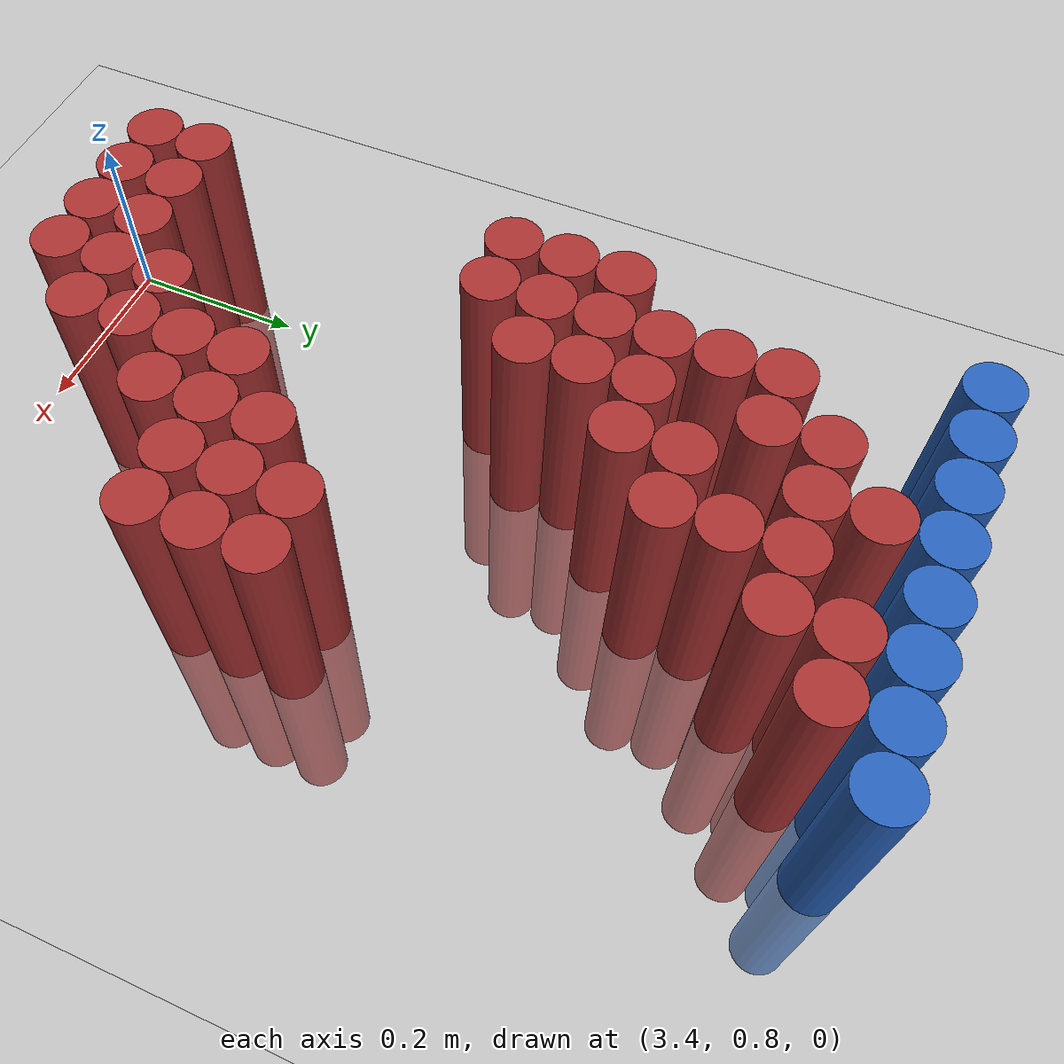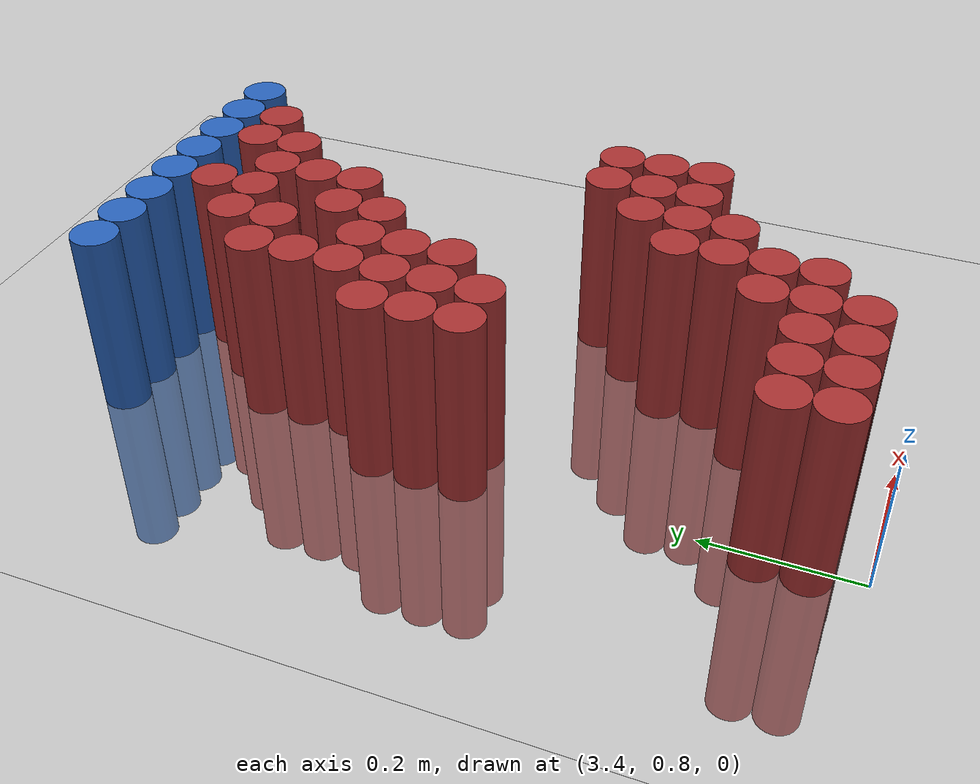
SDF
<sdf version="1.6">
 <world name="default">
  <model name="ground_plane">
   <static>1</static>
   <link name="link">
    <collision name="collision">
     <geometry><plane><normal>0 0 1</normal><size>100 100</size></plane></geometry>
     <surface><friction><ode><mu>100</mu><mu2>50</mu2></ode></friction></surface>
    </collision>
    <visual name="visual">
     <cast_shadows>0</cast_shadows>
     <geometry><plane><normal>0 0 1</normal><size>100 100</size></plane></geometry>
     <material>
      <script><uri>file://media/materials/scripts/gazebo.material</uri><name>Gazebo/Grey</name></script>
     </material>
    </visual>
   </link>
  </model>
  <model name="unit_cylinder_117">
   <static>1</static>
   <pose>3.390000 1.770000 0.000000 0.000000 0.000000 0.000000</pose>
   <link name="link">
    <inertial>
     <mass>1</mass>
     <inertia><ixx>0.145833</ixx><ixy>0</ixy><ixz>0</ixz><iyy>0.145833</iyy><iyz>0</iyz><izz>0.125</izz></inertia>
    </inertial>
    <collision name="collision">
     <geometry><cylinder><radius>0.030000</radius><length>0.5</length></cylinder></geometry>
    </collision>
    <visual name="visual">
     <geometry><cylinder><radius>0.030000</radius><length>0.5</length></cylinder></geometry>
     <material>
      <ambient>0.152000 0.379000 0.720000 1</ambient>
      <diffuse>0.152000 0.379000 0.720000 1</diffuse>
     </material>
     <material>
      <script><name>Gazebo/Grey</name><uri>file://media/materials/scripts/gazebo.material</uri></script>
     </material>
    </visual>
   </link>
  </model>
  <model name="unit_cylinder_118">
   <static>1</static>
   <pose>3.450000 1.770000 0.000000 0.000000 0.000000 0.000000</pose>
   <link name="link">
    <inertial>
     <mass>1</mass>
     <inertia><ixx>0.145833</ixx><ixy>0</ixy><ixz>0</ixz><iyy>0.145833</iyy><iyz>0</iyz><izz>0.125</izz></inertia>
    </inertial>
    <collision name="collision">
     <geometry><cylinder><radius>0.030000</radius><length>0.5</length></cylinder></geometry>
    </collision>
    <visual name="visual">
     <geometry><cylinder><radius>0.030000</radius><length>0.5</length></cylinder></geometry>
     <material>
      <ambient>0.152000 0.379000 0.720000 1</ambient>
      <diffuse>0.152000 0.379000 0.720000 1</diffuse>
     </material>
     <material>
      <script><name>Gazebo/Grey</name><uri>file://media/materials/scripts/gazebo.material</uri></script>
     </material>
    </visual>
   </link>
  </model>
  <model name="unit_cylinder_119">
   <static>1</static>
   <pose>3.510000 1.770000 0.000000 0.000000 0.000000 0.000000</pose>
   <link name="link">
    <inertial>
     <mass>1</mass>
     <inertia><ixx>0.145833</ixx><ixy>0</ixy><ixz>0</ixz><iyy>0.145833</iyy><iyz>0</iyz><izz>0.125</izz></inertia>
    </inertial>
    <collision name="collision">
     <geometry><cylinder><radius>0.030000</radius><length>0.5</length></cylinder></geometry>
    </collision>
    <visual name="visual">
     <geometry><cylinder><radius>0.030000</radius><length>0.5</length></cylinder></geometry>
     <material>
      <ambient>0.152000 0.379000 0.720000 1</ambient>
      <diffuse>0.152000 0.379000 0.720000 1</diffuse>
     </material>
     <material>
      <script><name>Gazebo/Grey</name><uri>file://media/materials/scripts/gazebo.material</uri></script>
     </material>
    </visual>
   </link>
  </model>
  <model name="unit_cylinder_120">
   <static>1</static>
   <pose>3.570000 1.770000 0.000000 0.000000 0.000000 0.000000</pose>
   <link name="link">
    <inertial>
     <mass>1</mass>
     <inertia><ixx>0.145833</ixx><ixy>0</ixy><ixz>0</ixz><iyy>0.145833</iyy><iyz>0</iyz><izz>0.125</izz></inertia>
    </inertial>
    <collision name="collision">
     <geometry><cylinder><radius>0.030000</radius><length>0.5</length></cylinder></geometry>
    </collision>
    <visual name="visual">
     <geometry><cylinder><radius>0.030000</radius><length>0.5</length></cylinder></geometry>
     <material>
      <ambient>0.152000 0.379000 0.720000 1</ambient>
      <diffuse>0.152000 0.379000 0.720000 1</diffuse>
     </material>
     <material>
      <script><name>Gazebo/Grey</name><uri>file://media/materials/scripts/gazebo.material</uri></script>
     </material>
    </visual>
   </link>
  </model>
  <model name="unit_cylinder_121">
   <static>1</static>
   <pose>3.630000 1.770000 0.000000 0.000000 0.000000 0.000000</pose>
   <link name="link">
    <inertial>
     <mass>1</mass>
     <inertia><ixx>0.145833</ixx><ixy>0</ixy><ixz>0</ixz><iyy>0.145833</iyy><iyz>0</iyz><izz>0.125</izz></inertia>
    </inertial>
    <collision name="collision">
     <geometry><cylinder><radius>0.030000</radius><length>0.5</length></cylinder></geometry>
    </collision>
    <visual name="visual">
     <geometry><cylinder><radius>0.030000</radius><length>0.5</length></cylinder></geometry>
     <material>
      <ambient>0.152000 0.379000 0.720000 1</ambient>
      <diffuse>0.152000 0.379000 0.720000 1</diffuse>
     </material>
     <material>
      <script><name>Gazebo/Grey</name><uri>file://media/materials/scripts/gazebo.material</uri></script>
     </material>
    </visual>
   </link>
  </model>
  <model name="unit_cylinder_122">
   <static>1</static>
   <pose>3.690000 1.770000 0.000000 0.000000 0.000000 0.000000</pose>
   <link name="link">
    <inertial>
     <mass>1</mass>
     <inertia><ixx>0.145833</ixx><ixy>0</ixy><ixz>0</ixz><iyy>0.145833</iyy><iyz>0</iyz><izz>0.125</izz></inertia>
    </inertial>
    <collision name="collision">
     <geometry><cylinder><radius>0.030000</radius><length>0.5</length></cylinder></geometry>
    </collision>
    <visual name="visual">
     <geometry><cylinder><radius>0.030000</radius><length>0.5</length></cylinder></geometry>
     <material>
      <ambient>0.152000 0.379000 0.720000 1</ambient>
      <diffuse>0.152000 0.379000 0.720000 1</diffuse>
     </material>
     <material>
      <script><name>Gazebo/Grey</name><uri>file://media/materials/scripts/gazebo.material</uri></script>
     </material>
    </visual>
   </link>
  </model>
  <model name="unit_cylinder_123">
   <static>1</static>
   <pose>3.750000 1.770000 0.000000 0.000000 0.000000 0.000000</pose>
   <link name="link">
    <inertial>
     <mass>1</mass>
     <inertia><ixx>0.145833</ixx><ixy>0</ixy><ixz>0</ixz><iyy>0.145833</iyy><iyz>0</iyz><izz>0.125</izz></inertia>
    </inertial>
    <collision name="collision">
     <geometry><cylinder><radius>0.030000</radius><length>0.5</length></cylinder></geometry>
    </collision>
    <visual name="visual">
     <geometry><cylinder><radius>0.030000</radius><length>0.5</length></cylinder></geometry>
     <material>
      <ambient>0.152000 0.379000 0.720000 1</ambient>
      <diffuse>0.152000 0.379000 0.720000 1</diffuse>
     </material>
     <material>
      <script><name>Gazebo/Grey</name><uri>file://media/materials/scripts/gazebo.material</uri></script>
     </material>
    </visual>
   </link>
  </model>
  <model name="unit_cylinder_124">
   <static>1</static>
   <pose>3.810000 1.770000 0.000000 0.000000 0.000000 0.000000</pose>
   <link name="link">
    <inertial>
     <mass>1</mass>
     <inertia><ixx>0.145833</ixx><ixy>0</ixy><ixz>0</ixz><iyy>0.145833</iyy><iyz>0</iyz><izz>0.125</izz></inertia>
    </inertial>
    <collision name="collision">
     <geometry><cylinder><radius>0.030000</radius><length>0.5</length></cylinder></geometry>
    </collision>
    <visual name="visual">
     <geometry><cylinder><radius>0.030000</radius><length>0.5</length></cylinder></geometry>
     <material>
      <ambient>0.152000 0.379000 0.720000 1</ambient>
      <diffuse>0.152000 0.379000 0.720000 1</diffuse>
     </material>
     <material>
      <script><name>Gazebo/Grey</name><uri>file://media/materials/scripts/gazebo.material</uri></script>
     </material>
    </visual>
   </link>
  </model>
  <model name="unit_cylinder_131">
   <static>1</static>
   <pose>3.570000 1.710000 0.000000 0.000000 0.000000 0.000000</pose>
   <link name="link">
    <inertial>
     <mass>1</mass>
     <inertia><ixx>0.145833</ixx><ixy>0</ixy><ixz>0</ixz><iyy>0.145833</iyy><iyz>0</iyz><izz>0.125</izz></inertia>
    </inertial>
    <collision name="collision">
     <geometry><cylinder><radius>0.030000</radius><length>0.5</length></cylinder></geometry>
    </collision>
    <visual name="visual">
     <geometry><cylinder><radius>0.030000</radius><length>0.5</length></cylinder></geometry>
     <material>
      <ambient>0.648000 0.192000 0.192000 1</ambient>
      <diffuse>0.648000 0.192000 0.192000 1</diffuse>
     </material>
     <material>
      <script><name>Gazebo/Grey</name><uri>file://media/materials/scripts/gazebo.material</uri></script>
     </material>
    </visual>
   </link>
  </model>
  <model name="unit_cylinder_132">
   <static>1</static>
   <pose>3.690000 1.710000 0.000000 0.000000 0.000000 0.000000</pose>
   <link name="link">
    <inertial>
     <mass>1</mass>
     <inertia><ixx>0.145833</ixx><ixy>0</ixy><ixz>0</ixz><iyy>0.145833</iyy><iyz>0</iyz><izz>0.125</izz></inertia>
    </inertial>
    <collision name="collision">
     <geometry><cylinder><radius>0.030000</radius><length>0.5</length></cylinder></geometry>
    </collision>
    <visual name="visual">
     <geometry><cylinder><radius>0.030000</radius><length>0.5</length></cylinder></geometry>
     <material>
      <ambient>0.648000 0.192000 0.192000 1</ambient>
      <diffuse>0.648000 0.192000 0.192000 1</diffuse>
     </material>
     <material>
      <script><name>Gazebo/Grey</name><uri>file://media/materials/scripts/gazebo.material</uri></script>
     </material>
    </visual>
   </link>
  </model>
  <model name="unit_cylinder_133">
   <static>1</static>
   <pose>3.750000 1.710000 0.000000 0.000000 0.000000 0.000000</pose>
   <link name="link">
    <inertial>
     <mass>1</mass>
     <inertia><ixx>0.145833</ixx><ixy>0</ixy><ixz>0</ixz><iyy>0.145833</iyy><iyz>0</iyz><izz>0.125</izz></inertia>
    </inertial>
    <collision name="collision">
     <geometry><cylinder><radius>0.030000</radius><length>0.5</length></cylinder></geometry>
    </collision>
    <visual name="visual">
     <geometry><cylinder><radius>0.030000</radius><length>0.5</length></cylinder></geometry>
     <material>
      <ambient>0.648000 0.192000 0.192000 1</ambient>
      <diffuse>0.648000 0.192000 0.192000 1</diffuse>
     </material>
     <material>
      <script><name>Gazebo/Grey</name><uri>file://media/materials/scripts/gazebo.material</uri></script>
     </material>
    </visual>
   </link>
  </model>
  <model name="unit_cylinder_139">
   <static>1</static>
   <pose>3.510000 1.650000 0.000000 0.000000 0.000000 0.000000</pose>
   <link name="link">
    <inertial>
     <mass>1</mass>
     <inertia><ixx>0.145833</ixx><ixy>0</ixy><ixz>0</ixz><iyy>0.145833</iyy><iyz>0</iyz><izz>0.125</izz></inertia>
    </inertial>
    <collision name="collision">
     <geometry><cylinder><radius>0.030000</radius><length>0.5</length></cylinder></geometry>
    </collision>
    <visual name="visual">
     <geometry><cylinder><radius>0.030000</radius><length>0.5</length></cylinder></geometry>
     <material>
      <ambient>0.648000 0.192000 0.192000 1</ambient>
      <diffuse>0.648000 0.192000 0.192000 1</diffuse>
     </material>
     <material>
      <script><name>Gazebo/Grey</name><uri>file://media/materials/scripts/gazebo.material</uri></script>
     </material>
    </visual>
   </link>
  </model>
  <model name="unit_cylinder_140">
   <static>1</static>
   <pose>3.570000 1.650000 0.000000 0.000000 0.000000 0.000000</pose>
   <link name="link">
    <inertial>
     <mass>1</mass>
     <inertia><ixx>0.145833</ixx><ixy>0</ixy><ixz>0</ixz><iyy>0.145833</iyy><iyz>0</iyz><izz>0.125</izz></inertia>
    </inertial>
    <collision name="collision">
     <geometry><cylinder><radius>0.030000</radius><length>0.5</length></cylinder></geometry>
    </collision>
    <visual name="visual">
     <geometry><cylinder><radius>0.030000</radius><length>0.5</length></cylinder></geometry>
     <material>
      <ambient>0.648000 0.192000 0.192000 1</ambient>
      <diffuse>0.648000 0.192000 0.192000 1</diffuse>
     </material>
     <material>
      <script><name>Gazebo/Grey</name><uri>file://media/materials/scripts/gazebo.material</uri></script>
     </material>
    </visual>
   </link>
  </model>
  <model name="unit_cylinder_141">
   <static>1</static>
   <pose>3.630000 1.650000 0.000000 0.000000 0.000000 0.000000</pose>
   <link name="link">
    <inertial>
     <mass>1</mass>
     <inertia><ixx>0.145833</ixx><ixy>0</ixy><ixz>0</ixz><iyy>0.145833</iyy><iyz>0</iyz><izz>0.125</izz></inertia>
    </inertial>
    <collision name="collision">
     <geometry><cylinder><radius>0.030000</radius><length>0.5</length></cylinder></geometry>
    </collision>
    <visual name="visual">
     <geometry><cylinder><radius>0.030000</radius><length>0.5</length></cylinder></geometry>
     <material>
      <ambient>0.648000 0.192000 0.192000 1</ambient>
      <diffuse>0.648000 0.192000 0.192000 1</diffuse>
     </material>
     <material>
      <script><name>Gazebo/Grey</name><uri>file://media/materials/scripts/gazebo.material</uri></script>
     </material>
    </visual>
   </link>
  </model>
  <model name="unit_cylinder_142">
   <static>1</static>
   <pose>3.690000 1.650000 0.000000 0.000000 0.000000 0.000000</pose>
   <link name="link">
    <inertial>
     <mass>1</mass>
     <inertia><ixx>0.145833</ixx><ixy>0</ixy><ixz>0</ixz><iyy>0.145833</iyy><iyz>0</iyz><izz>0.125</izz></inertia>
    </inertial>
    <collision name="collision">
     <geometry><cylinder><radius>0.030000</radius><length>0.5</length></cylinder></geometry>
    </collision>
    <visual name="visual">
     <geometry><cylinder><radius>0.030000</radius><length>0.5</length></cylinder></geometry>
     <material>
      <ambient>0.648000 0.192000 0.192000 1</ambient>
      <diffuse>0.648000 0.192000 0.192000 1</diffuse>
     </material>
     <material>
      <script><name>Gazebo/Grey</name><uri>file://media/materials/scripts/gazebo.material</uri></script>
     </material>
    </visual>
   </link>
  </model>
  <model name="unit_cylinder_151">
   <static>1</static>
   <pose>3.450000 1.590000 0.000000 0.000000 0.000000 0.000000</pose>
   <link name="link">
    <inertial>
     <mass>1</mass>
     <inertia><ixx>0.145833</ixx><ixy>0</ixy><ixz>0</ixz><iyy>0.145833</iyy><iyz>0</iyz><izz>0.125</izz></inertia>
    </inertial>
    <collision name="collision">
     <geometry><cylinder><radius>0.030000</radius><length>0.5</length></cylinder></geometry>
    </collision>
    <visual name="visual">
     <geometry><cylinder><radius>0.030000</radius><length>0.5</length></cylinder></geometry>
     <material>
      <ambient>0.648000 0.192000 0.192000 1</ambient>
      <diffuse>0.648000 0.192000 0.192000 1</diffuse>
     </material>
     <material>
      <script><name>Gazebo/Grey</name><uri>file://media/materials/scripts/gazebo.material</uri></script>
     </material>
    </visual>
   </link>
  </model>
  <model name="unit_cylinder_152">
   <static>1</static>
   <pose>3.510000 1.590000 0.000000 0.000000 0.000000 0.000000</pose>
   <link name="link">
    <inertial>
     <mass>1</mass>
     <inertia><ixx>0.145833</ixx><ixy>0</ixy><ixz>0</ixz><iyy>0.145833</iyy><iyz>0</iyz><izz>0.125</izz></inertia>
    </inertial>
    <collision name="collision">
     <geometry><cylinder><radius>0.030000</radius><length>0.5</length></cylinder></geometry>
    </collision>
    <visual name="visual">
     <geometry><cylinder><radius>0.030000</radius><length>0.5</length></cylinder></geometry>
     <material>
      <ambient>0.648000 0.192000 0.192000 1</ambient>
      <diffuse>0.648000 0.192000 0.192000 1</diffuse>
     </material>
     <material>
      <script><name>Gazebo/Grey</name><uri>file://media/materials/scripts/gazebo.material</uri></script>
     </material>
    </visual>
   </link>
  </model>
  <model name="unit_cylinder_153">
   <static>1</static>
   <pose>3.630000 1.590000 0.000000 0.000000 0.000000 0.000000</pose>
   <link name="link">
    <inertial>
     <mass>1</mass>
     <inertia><ixx>0.145833</ixx><ixy>0</ixy><ixz>0</ixz><iyy>0.145833</iyy><iyz>0</iyz><izz>0.125</izz></inertia>
    </inertial>
    <collision name="collision">
     <geometry><cylinder><radius>0.030000</radius><length>0.5</length></cylinder></geometry>
    </collision>
    <visual name="visual">
     <geometry><cylinder><radius>0.030000</radius><length>0.5</length></cylinder></geometry>
     <material>
      <ambient>0.648000 0.192000 0.192000 1</ambient>
      <diffuse>0.648000 0.192000 0.192000 1</diffuse>
     </material>
     <material>
      <script><name>Gazebo/Grey</name><uri>file://media/materials/scripts/gazebo.material</uri></script>
     </material>
    </visual>
   </link>
  </model>
  <model name="unit_cylinder_164">
   <static>1</static>
   <pose>3.450000 1.530000 0.000000 0.000000 0.000000 0.000000</pose>
   <link name="link">
    <inertial>
     <mass>1</mass>
     <inertia><ixx>0.145833</ixx><ixy>0</ixy><ixz>0</ixz><iyy>0.145833</iyy><iyz>0</iyz><izz>0.125</izz></inertia>
    </inertial>
    <collision name="collision">
     <geometry><cylinder><radius>0.030000</radius><length>0.5</length></cylinder></geometry>
    </collision>
    <visual name="visual">
     <geometry><cylinder><radius>0.030000</radius><length>0.5</length></cylinder></geometry>
     <material>
      <ambient>0.648000 0.192000 0.192000 1</ambient>
      <diffuse>0.648000 0.192000 0.192000 1</diffuse>
     </material>
     <material>
      <script><name>Gazebo/Grey</name><uri>file://media/materials/scripts/gazebo.material</uri></script>
     </material>
    </visual>
   </link>
  </model>
  <model name="unit_cylinder_165">
   <static>1</static>
   <pose>3.570000 1.530000 0.000000 0.000000 0.000000 0.000000</pose>
   <link name="link">
    <inertial>
     <mass>1</mass>
     <inertia><ixx>0.145833</ixx><ixy>0</ixy><ixz>0</ixz><iyy>0.145833</iyy><iyz>0</iyz><izz>0.125</izz></inertia>
    </inertial>
    <collision name="collision">
     <geometry><cylinder><radius>0.030000</radius><length>0.5</length></cylinder></geometry>
    </collision>
    <visual name="visual">
     <geometry><cylinder><radius>0.030000</radius><length>0.5</length></cylinder></geometry>
     <material>
      <ambient>0.648000 0.192000 0.192000 1</ambient>
      <diffuse>0.648000 0.192000 0.192000 1</diffuse>
     </material>
     <material>
      <script><name>Gazebo/Grey</name><uri>file://media/materials/scripts/gazebo.material</uri></script>
     </material>
    </visual>
   </link>
  </model>
  <model name="unit_cylinder_166">
   <static>1</static>
   <pose>3.630000 1.530000 0.000000 0.000000 0.000000 0.000000</pose>
   <link name="link">
    <inertial>
     <mass>1</mass>
     <inertia><ixx>0.145833</ixx><ixy>0</ixy><ixz>0</ixz><iyy>0.145833</iyy><iyz>0</iyz><izz>0.125</izz></inertia>
    </inertial>
    <collision name="collision">
     <geometry><cylinder><radius>0.030000</radius><length>0.5</length></cylinder></geometry>
    </collision>
    <visual name="visual">
     <geometry><cylinder><radius>0.030000</radius><length>0.5</length></cylinder></geometry>
     <material>
      <ambient>0.648000 0.192000 0.192000 1</ambient>
      <diffuse>0.648000 0.192000 0.192000 1</diffuse>
     </material>
     <material>
      <script><name>Gazebo/Grey</name><uri>file://media/materials/scripts/gazebo.material</uri></script>
     </material>
    </visual>
   </link>
  </model>
  <model name="unit_cylinder_174">
   <static>1</static>
   <pose>3.450000 1.470000 0.000000 0.000000 0.000000 0.000000</pose>
   <link name="link">
    <inertial>
     <mass>1</mass>
     <inertia><ixx>0.145833</ixx><ixy>0</ixy><ixz>0</ixz><iyy>0.145833</iyy><iyz>0</iyz><izz>0.125</izz></inertia>
    </inertial>
    <collision name="collision">
     <geometry><cylinder><radius>0.030000</radius><length>0.5</length></cylinder></geometry>
    </collision>
    <visual name="visual">
     <geometry><cylinder><radius>0.030000</radius><length>0.5</length></cylinder></geometry>
     <material>
      <ambient>0.648000 0.192000 0.192000 1</ambient>
      <diffuse>0.648000 0.192000 0.192000 1</diffuse>
     </material>
     <material>
      <script><name>Gazebo/Grey</name><uri>file://media/materials/scripts/gazebo.material</uri></script>
     </material>
    </visual>
   </link>
  </model>
  <model name="unit_cylinder_175">
   <static>1</static>
   <pose>3.510000 1.470000 0.000000 0.000000 0.000000 0.000000</pose>
   <link name="link">
    <inertial>
     <mass>1</mass>
     <inertia><ixx>0.145833</ixx><ixy>0</ixy><ixz>0</ixz><iyy>0.145833</iyy><iyz>0</iyz><izz>0.125</izz></inertia>
    </inertial>
    <collision name="collision">
     <geometry><cylinder><radius>0.030000</radius><length>0.5</length></cylinder></geometry>
    </collision>
    <visual name="visual">
     <geometry><cylinder><radius>0.030000</radius><length>0.5</length></cylinder></geometry>
     <material>
      <ambient>0.648000 0.192000 0.192000 1</ambient>
      <diffuse>0.648000 0.192000 0.192000 1</diffuse>
     </material>
     <material>
      <script><name>Gazebo/Grey</name><uri>file://media/materials/scripts/gazebo.material</uri></script>
     </material>
    </visual>
   </link>
  </model>
  <model name="unit_cylinder_176">
   <static>1</static>
   <pose>3.570000 1.470000 0.000000 0.000000 0.000000 0.000000</pose>
   <link name="link">
    <inertial>
     <mass>1</mass>
     <inertia><ixx>0.145833</ixx><ixy>0</ixy><ixz>0</ixz><iyy>0.145833</iyy><iyz>0</iyz><izz>0.125</izz></inertia>
    </inertial>
    <collision name="collision">
     <geometry><cylinder><radius>0.030000</radius><length>0.5</length></cylinder></geometry>
    </collision>
    <visual name="visual">
     <geometry><cylinder><radius>0.030000</radius><length>0.5</length></cylinder></geometry>
     <material>
      <ambient>0.648000 0.192000 0.192000 1</ambient>
      <diffuse>0.648000 0.192000 0.192000 1</diffuse>
     </material>
     <material>
      <script><name>Gazebo/Grey</name><uri>file://media/materials/scripts/gazebo.material</uri></script>
     </material>
    </visual>
   </link>
  </model>
  <model name="unit_cylinder_180">
   <static>1</static>
   <pose>3.390000 1.410000 0.000000 0.000000 0.000000 0.000000</pose>
   <link name="link">
    <inertial>
     <mass>1</mass>
     <inertia><ixx>0.145833</ixx><ixy>0</ixy><ixz>0</ixz><iyy>0.145833</iyy><iyz>0</iyz><izz>0.125</izz></inertia>
    </inertial>
    <collision name="collision">
     <geometry><cylinder><radius>0.030000</radius><length>0.5</length></cylinder></geometry>
    </collision>
    <visual name="visual">
     <geometry><cylinder><radius>0.030000</radius><length>0.5</length></cylinder></geometry>
     <material>
      <ambient>0.648000 0.192000 0.192000 1</ambient>
      <diffuse>0.648000 0.192000 0.192000 1</diffuse>
     </material>
     <material>
      <script><name>Gazebo/Grey</name><uri>file://media/materials/scripts/gazebo.material</uri></script>
     </material>
    </visual>
   </link>
  </model>
  <model name="unit_cylinder_181">
   <static>1</static>
   <pose>3.450000 1.410000 0.000000 0.000000 0.000000 0.000000</pose>
   <link name="link">
    <inertial>
     <mass>1</mass>
     <inertia><ixx>0.145833</ixx><ixy>0</ixy><ixz>0</ixz><iyy>0.145833</iyy><iyz>0</iyz><izz>0.125</izz></inertia>
    </inertial>
    <collision name="collision">
     <geometry><cylinder><radius>0.030000</radius><length>0.5</length></cylinder></geometry>
    </collision>
    <visual name="visual">
     <geometry><cylinder><radius>0.030000</radius><length>0.5</length></cylinder></geometry>
     <material>
      <ambient>0.648000 0.192000 0.192000 1</ambient>
      <diffuse>0.648000 0.192000 0.192000 1</diffuse>
     </material>
     <material>
      <script><name>Gazebo/Grey</name><uri>file://media/materials/scripts/gazebo.material</uri></script>
     </material>
    </visual>
   </link>
  </model>
  <model name="unit_cylinder_182">
   <static>1</static>
   <pose>3.510000 1.410000 0.000000 0.000000 0.000000 0.000000</pose>
   <link name="link">
    <inertial>
     <mass>1</mass>
     <inertia><ixx>0.145833</ixx><ixy>0</ixy><ixz>0</ixz><iyy>0.145833</iyy><iyz>0</iyz><izz>0.125</izz></inertia>
    </inertial>
    <collision name="collision">
     <geometry><cylinder><radius>0.030000</radius><length>0.5</length></cylinder></geometry>
    </collision>
    <visual name="visual">
     <geometry><cylinder><radius>0.030000</radius><length>0.5</length></cylinder></geometry>
     <material>
      <ambient>0.648000 0.192000 0.192000 1</ambient>
      <diffuse>0.648000 0.192000 0.192000 1</diffuse>
     </material>
     <material>
      <script><name>Gazebo/Grey</name><uri>file://media/materials/scripts/gazebo.material</uri></script>
     </material>
    </visual>
   </link>
  </model>
  <model name="unit_cylinder_184">
   <static>1</static>
   <pose>3.390000 1.350000 0.000000 0.000000 0.000000 0.000000</pose>
   <link name="link">
    <inertial>
     <mass>1</mass>
     <inertia><ixx>0.145833</ixx><ixy>0</ixy><ixz>0</ixz><iyy>0.145833</iyy><iyz>0</iyz><izz>0.125</izz></inertia>
    </inertial>
    <collision name="collision">
     <geometry><cylinder><radius>0.030000</radius><length>0.5</length></cylinder></geometry>
    </collision>
    <visual name="visual">
     <geometry><cylinder><radius>0.030000</radius><length>0.5</length></cylinder></geometry>
     <material>
      <ambient>0.648000 0.192000 0.192000 1</ambient>
      <diffuse>0.648000 0.192000 0.192000 1</diffuse>
     </material>
     <material>
      <script><name>Gazebo/Grey</name><uri>file://media/materials/scripts/gazebo.material</uri></script>
     </material>
    </visual>
   </link>
  </model>
  <model name="unit_cylinder_185">
   <static>1</static>
   <pose>3.450000 1.350000 0.000000 0.000000 0.000000 0.000000</pose>
   <link name="link">
    <inertial>
     <mass>1</mass>
     <inertia><ixx>0.145833</ixx><ixy>0</ixy><ixz>0</ixz><iyy>0.145833</iyy><iyz>0</iyz><izz>0.125</izz></inertia>
    </inertial>
    <collision name="collision">
     <geometry><cylinder><radius>0.030000</radius><length>0.5</length></cylinder></geometry>
    </collision>
    <visual name="visual">
     <geometry><cylinder><radius>0.030000</radius><length>0.5</length></cylinder></geometry>
     <material>
      <ambient>0.648000 0.192000 0.192000 1</ambient>
      <diffuse>0.648000 0.192000 0.192000 1</diffuse>
     </material>
     <material>
      <script><name>Gazebo/Grey</name><uri>file://media/materials/scripts/gazebo.material</uri></script>
     </material>
    </visual>
   </link>
  </model>
  <model name="unit_cylinder_186">
   <static>1</static>
   <pose>3.510000 1.350000 0.000000 0.000000 0.000000 0.000000</pose>
   <link name="link">
    <inertial>
     <mass>1</mass>
     <inertia><ixx>0.145833</ixx><ixy>0</ixy><ixz>0</ixz><iyy>0.145833</iyy><iyz>0</iyz><izz>0.125</izz></inertia>
    </inertial>
    <collision name="collision">
     <geometry><cylinder><radius>0.030000</radius><length>0.5</length></cylinder></geometry>
    </collision>
    <visual name="visual">
     <geometry><cylinder><radius>0.030000</radius><length>0.5</length></cylinder></geometry>
     <material>
      <ambient>0.648000 0.192000 0.192000 1</ambient>
      <diffuse>0.648000 0.192000 0.192000 1</diffuse>
     </material>
     <material>
      <script><name>Gazebo/Grey</name><uri>file://media/materials/scripts/gazebo.material</uri></script>
     </material>
    </visual>
   </link>
  </model>
  <model name="unit_cylinder_190">
   <static>1</static>
   <pose>3.390000 1.290000 0.000000 0.000000 0.000000 0.000000</pose>
   <link name="link">
    <inertial>
     <mass>1</mass>
     <inertia><ixx>0.145833</ixx><ixy>0</ixy><ixz>0</ixz><iyy>0.145833</iyy><iyz>0</iyz><izz>0.125</izz></inertia>
    </inertial>
    <collision name="collision">
     <geometry><cylinder><radius>0.030000</radius><length>0.5</length></cylinder></geometry>
    </collision>
    <visual name="visual">
     <geometry><cylinder><radius>0.030000</radius><length>0.5</length></cylinder></geometry>
     <material>
      <ambient>0.648000 0.192000 0.192000 1</ambient>
      <diffuse>0.648000 0.192000 0.192000 1</diffuse>
     </material>
     <material>
      <script><name>Gazebo/Grey</name><uri>file://media/materials/scripts/gazebo.material</uri></script>
     </material>
    </visual>
   </link>
  </model>
  <model name="unit_cylinder_191">
   <static>1</static>
   <pose>3.450000 1.290000 0.000000 0.000000 0.000000 0.000000</pose>
   <link name="link">
    <inertial>
     <mass>1</mass>
     <inertia><ixx>0.145833</ixx><ixy>0</ixy><ixz>0</ixz><iyy>0.145833</iyy><iyz>0</iyz><izz>0.125</izz></inertia>
    </inertial>
    <collision name="collision">
     <geometry><cylinder><radius>0.030000</radius><length>0.5</length></cylinder></geometry>
    </collision>
    <visual name="visual">
     <geometry><cylinder><radius>0.030000</radius><length>0.5</length></cylinder></geometry>
     <material>
      <ambient>0.648000 0.192000 0.192000 1</ambient>
      <diffuse>0.648000 0.192000 0.192000 1</diffuse>
     </material>
     <material>
      <script><name>Gazebo/Grey</name><uri>file://media/materials/scripts/gazebo.material</uri></script>
     </material>
    </visual>
   </link>
  </model>
  <model name="unit_cylinder_195">
   <static>1</static>
   <pose>3.750000 1.230000 0.000000 0.000000 0.000000 0.000000</pose>
   <link name="link">
    <inertial>
     <mass>1</mass>
     <inertia><ixx>0.145833</ixx><ixy>0</ixy><ixz>0</ixz><iyy>0.145833</iyy><iyz>0</iyz><izz>0.125</izz></inertia>
    </inertial>
    <collision name="collision">
     <geometry><cylinder><radius>0.030000</radius><length>0.5</length></cylinder></geometry>
    </collision>
    <visual name="visual">
     <geometry><cylinder><radius>0.030000</radius><length>0.5</length></cylinder></geometry>
     <material>
      <ambient>0.648000 0.192000 0.192000 1</ambient>
      <diffuse>0.648000 0.192000 0.192000 1</diffuse>
     </material>
     <material>
      <script><name>Gazebo/Grey</name><uri>file://media/materials/scripts/gazebo.material</uri></script>
     </material>
    </visual>
   </link>
  </model>
  <model name="unit_cylinder_196">
   <static>1</static>
   <pose>3.810000 1.230000 0.000000 0.000000 0.000000 0.000000</pose>
   <link name="link">
    <inertial>
     <mass>1</mass>
     <inertia><ixx>0.145833</ixx><ixy>0</ixy><ixz>0</ixz><iyy>0.145833</iyy><iyz>0</iyz><izz>0.125</izz></inertia>
    </inertial>
    <collision name="collision">
     <geometry><cylinder><radius>0.030000</radius><length>0.5</length></cylinder></geometry>
    </collision>
    <visual name="visual">
     <geometry><cylinder><radius>0.030000</radius><length>0.5</length></cylinder></geometry>
     <material>
      <ambient>0.648000 0.192000 0.192000 1</ambient>
      <diffuse>0.648000 0.192000 0.192000 1</diffuse>
     </material>
     <material>
      <script><name>Gazebo/Grey</name><uri>file://media/materials/scripts/gazebo.material</uri></script>
     </material>
    </visual>
   </link>
  </model>
  <model name="unit_cylinder_200">
   <static>1</static>
   <pose>3.690000 1.170000 0.000000 0.000000 0.000000 0.000000</pose>
   <link name="link">
    <inertial>
     <mass>1</mass>
     <inertia><ixx>0.145833</ixx><ixy>0</ixy><ixz>0</ixz><iyy>0.145833</iyy><iyz>0</iyz><izz>0.125</izz></inertia>
    </inertial>
    <collision name="collision">
     <geometry><cylinder><radius>0.030000</radius><length>0.5</length></cylinder></geometry>
    </collision>
    <visual name="visual">
     <geometry><cylinder><radius>0.030000</radius><length>0.5</length></cylinder></geometry>
     <material>
      <ambient>0.648000 0.192000 0.192000 1</ambient>
      <diffuse>0.648000 0.192000 0.192000 1</diffuse>
     </material>
     <material>
      <script><name>Gazebo/Grey</name><uri>file://media/materials/scripts/gazebo.material</uri></script>
     </material>
    </visual>
   </link>
  </model>
  <model name="unit_cylinder_201">
   <static>1</static>
   <pose>3.750000 1.170000 0.000000 0.000000 0.000000 0.000000</pose>
   <link name="link">
    <inertial>
     <mass>1</mass>
     <inertia><ixx>0.145833</ixx><ixy>0</ixy><ixz>0</ixz><iyy>0.145833</iyy><iyz>0</iyz><izz>0.125</izz></inertia>
    </inertial>
    <collision name="collision">
     <geometry><cylinder><radius>0.030000</radius><length>0.5</length></cylinder></geometry>
    </collision>
    <visual name="visual">
     <geometry><cylinder><radius>0.030000</radius><length>0.5</length></cylinder></geometry>
     <material>
      <ambient>0.648000 0.192000 0.192000 1</ambient>
      <diffuse>0.648000 0.192000 0.192000 1</diffuse>
     </material>
     <material>
      <script><name>Gazebo/Grey</name><uri>file://media/materials/scripts/gazebo.material</uri></script>
     </material>
    </visual>
   </link>
  </model>
  <model name="unit_cylinder_202">
   <static>1</static>
   <pose>3.810000 1.170000 0.000000 0.000000 0.000000 0.000000</pose>
   <link name="link">
    <inertial>
     <mass>1</mass>
     <inertia><ixx>0.145833</ixx><ixy>0</ixy><ixz>0</ixz><iyy>0.145833</iyy><iyz>0</iyz><izz>0.125</izz></inertia>
    </inertial>
    <collision name="collision">
     <geometry><cylinder><radius>0.030000</radius><length>0.5</length></cylinder></geometry>
    </collision>
    <visual name="visual">
     <geometry><cylinder><radius>0.030000</radius><length>0.5</length></cylinder></geometry>
     <material>
      <ambient>0.648000 0.192000 0.192000 1</ambient>
      <diffuse>0.648000 0.192000 0.192000 1</diffuse>
     </material>
     <material>
      <script><name>Gazebo/Grey</name><uri>file://media/materials/scripts/gazebo.material</uri></script>
     </material>
    </visual>
   </link>
  </model>
  <model name="unit_cylinder_207">
   <static>1</static>
   <pose>3.630000 1.110000 0.000000 0.000000 0.000000 0.000000</pose>
   <link name="link">
    <inertial>
     <mass>1</mass>
     <inertia><ixx>0.145833</ixx><ixy>0</ixy><ixz>0</ixz><iyy>0.145833</iyy><iyz>0</iyz><izz>0.125</izz></inertia>
    </inertial>
    <collision name="collision">
     <geometry><cylinder><radius>0.030000</radius><length>0.5</length></cylinder></geometry>
    </collision>
    <visual name="visual">
     <geometry><cylinder><radius>0.030000</radius><length>0.5</length></cylinder></geometry>
     <material>
      <ambient>0.648000 0.192000 0.192000 1</ambient>
      <diffuse>0.648000 0.192000 0.192000 1</diffuse>
     </material>
     <material>
      <script><name>Gazebo/Grey</name><uri>file://media/materials/scripts/gazebo.material</uri></script>
     </material>
    </visual>
   </link>
  </model>
  <model name="unit_cylinder_208">
   <static>1</static>
   <pose>3.690000 1.110000 0.000000 0.000000 0.000000 0.000000</pose>
   <link name="link">
    <inertial>
     <mass>1</mass>
     <inertia><ixx>0.145833</ixx><ixy>0</ixy><ixz>0</ixz><iyy>0.145833</iyy><iyz>0</iyz><izz>0.125</izz></inertia>
    </inertial>
    <collision name="collision">
     <geometry><cylinder><radius>0.030000</radius><length>0.5</length></cylinder></geometry>
    </collision>
    <visual name="visual">
     <geometry><cylinder><radius>0.030000</radius><length>0.5</length></cylinder></geometry>
     <material>
      <ambient>0.648000 0.192000 0.192000 1</ambient>
      <diffuse>0.648000 0.192000 0.192000 1</diffuse>
     </material>
     <material>
      <script><name>Gazebo/Grey</name><uri>file://media/materials/scripts/gazebo.material</uri></script>
     </material>
    </visual>
   </link>
  </model>
  <model name="unit_cylinder_209">
   <static>1</static>
   <pose>3.750000 1.110000 0.000000 0.000000 0.000000 0.000000</pose>
   <link name="link">
    <inertial>
     <mass>1</mass>
     <inertia><ixx>0.145833</ixx><ixy>0</ixy><ixz>0</ixz><iyy>0.145833</iyy><iyz>0</iyz><izz>0.125</izz></inertia>
    </inertial>
    <collision name="collision">
     <geometry><cylinder><radius>0.030000</radius><length>0.5</length></cylinder></geometry>
    </collision>
    <visual name="visual">
     <geometry><cylinder><radius>0.030000</radius><length>0.5</length></cylinder></geometry>
     <material>
      <ambient>0.648000 0.192000 0.192000 1</ambient>
      <diffuse>0.648000 0.192000 0.192000 1</diffuse>
     </material>
     <material>
      <script><name>Gazebo/Grey</name><uri>file://media/materials/scripts/gazebo.material</uri></script>
     </material>
    </visual>
   </link>
  </model>
  <model name="unit_cylinder_210">
   <static>1</static>
   <pose>3.810000 1.110000 0.000000 0.000000 0.000000 0.000000</pose>
   <link name="link">
    <inertial>
     <mass>1</mass>
     <inertia><ixx>0.145833</ixx><ixy>0</ixy><ixz>0</ixz><iyy>0.145833</iyy><iyz>0</iyz><izz>0.125</izz></inertia>
    </inertial>
    <collision name="collision">
     <geometry><cylinder><radius>0.030000</radius><length>0.5</length></cylinder></geometry>
    </collision>
    <visual name="visual">
     <geometry><cylinder><radius>0.030000</radius><length>0.5</length></cylinder></geometry>
     <material>
      <ambient>0.648000 0.192000 0.192000 1</ambient>
      <diffuse>0.648000 0.192000 0.192000 1</diffuse>
     </material>
     <material>
      <script><name>Gazebo/Grey</name><uri>file://media/materials/scripts/gazebo.material</uri></script>
     </material>
    </visual>
   </link>
  </model>
  <model name="unit_cylinder_219">
   <static>1</static>
   <pose>3.630000 1.050000 0.000000 0.000000 0.000000 0.000000</pose>
   <link name="link">
    <inertial>
     <mass>1</mass>
     <inertia><ixx>0.145833</ixx><ixy>0</ixy><ixz>0</ixz><iyy>0.145833</iyy><iyz>0</iyz><izz>0.125</izz></inertia>
    </inertial>
    <collision name="collision">
     <geometry><cylinder><radius>0.030000</radius><length>0.5</length></cylinder></geometry>
    </collision>
    <visual name="visual">
     <geometry><cylinder><radius>0.030000</radius><length>0.5</length></cylinder></geometry>
     <material>
      <ambient>0.648000 0.192000 0.192000 1</ambient>
      <diffuse>0.648000 0.192000 0.192000 1</diffuse>
     </material>
     <material>
      <script><name>Gazebo/Grey</name><uri>file://media/materials/scripts/gazebo.material</uri></script>
     </material>
    </visual>
   </link>
  </model>
  <model name="unit_cylinder_220">
   <static>1</static>
   <pose>3.690000 1.050000 0.000000 0.000000 0.000000 0.000000</pose>
   <link name="link">
    <inertial>
     <mass>1</mass>
     <inertia><ixx>0.145833</ixx><ixy>0</ixy><ixz>0</ixz><iyy>0.145833</iyy><iyz>0</iyz><izz>0.125</izz></inertia>
    </inertial>
    <collision name="collision">
     <geometry><cylinder><radius>0.030000</radius><length>0.5</length></cylinder></geometry>
    </collision>
    <visual name="visual">
     <geometry><cylinder><radius>0.030000</radius><length>0.5</length></cylinder></geometry>
     <material>
      <ambient>0.648000 0.192000 0.192000 1</ambient>
      <diffuse>0.648000 0.192000 0.192000 1</diffuse>
     </material>
     <material>
      <script><name>Gazebo/Grey</name><uri>file://media/materials/scripts/gazebo.material</uri></script>
     </material>
    </visual>
   </link>
  </model>
  <model name="unit_cylinder_227">
   <static>1</static>
   <pose>3.570000 0.990000 0.000000 0.000000 0.000000 0.000000</pose>
   <link name="link">
    <inertial>
     <mass>1</mass>
     <inertia><ixx>0.145833</ixx><ixy>0</ixy><ixz>0</ixz><iyy>0.145833</iyy><iyz>0</iyz><izz>0.125</izz></inertia>
    </inertial>
    <collision name="collision">
     <geometry><cylinder><radius>0.030000</radius><length>0.5</length></cylinder></geometry>
    </collision>
    <visual name="visual">
     <geometry><cylinder><radius>0.030000</radius><length>0.5</length></cylinder></geometry>
     <material>
      <ambient>0.648000 0.192000 0.192000 1</ambient>
      <diffuse>0.648000 0.192000 0.192000 1</diffuse>
     </material>
     <material>
      <script><name>Gazebo/Grey</name><uri>file://media/materials/scripts/gazebo.material</uri></script>
     </material>
    </visual>
   </link>
  </model>
  <model name="unit_cylinder_228">
   <static>1</static>
   <pose>3.630000 0.990000 0.000000 0.000000 0.000000 0.000000</pose>
   <link name="link">
    <inertial>
     <mass>1</mass>
     <inertia><ixx>0.145833</ixx><ixy>0</ixy><ixz>0</ixz><iyy>0.145833</iyy><iyz>0</iyz><izz>0.125</izz></inertia>
    </inertial>
    <collision name="collision">
     <geometry><cylinder><radius>0.030000</radius><length>0.5</length></cylinder></geometry>
    </collision>
    <visual name="visual">
     <geometry><cylinder><radius>0.030000</radius><length>0.5</length></cylinder></geometry>
     <material>
      <ambient>0.648000 0.192000 0.192000 1</ambient>
      <diffuse>0.648000 0.192000 0.192000 1</diffuse>
     </material>
     <material>
      <script><name>Gazebo/Grey</name><uri>file://media/materials/scripts/gazebo.material</uri></script>
     </material>
    </visual>
   </link>
  </model>
  <model name="unit_cylinder_232">
   <static>1</static>
   <pose>3.390000 0.930000 0.000000 0.000000 0.000000 0.000000</pose>
   <link name="link">
    <inertial>
     <mass>1</mass>
     <inertia><ixx>0.145833</ixx><ixy>0</ixy><ixz>0</ixz><iyy>0.145833</iyy><iyz>0</iyz><izz>0.125</izz></inertia>
    </inertial>
    <collision name="collision">
     <geometry><cylinder><radius>0.030000</radius><length>0.5</length></cylinder></geometry>
    </collision>
    <visual name="visual">
     <geometry><cylinder><radius>0.030000</radius><length>0.5</length></cylinder></geometry>
     <material>
      <ambient>0.648000 0.192000 0.192000 1</ambient>
      <diffuse>0.648000 0.192000 0.192000 1</diffuse>
     </material>
     <material>
      <script><name>Gazebo/Grey</name><uri>file://media/materials/scripts/gazebo.material</uri></script>
     </material>
    </visual>
   </link>
  </model>
  <model name="unit_cylinder_233">
   <static>1</static>
   <pose>3.450000 0.930000 0.000000 0.000000 0.000000 0.000000</pose>
   <link name="link">
    <inertial>
     <mass>1</mass>
     <inertia><ixx>0.145833</ixx><ixy>0</ixy><ixz>0</ixz><iyy>0.145833</iyy><iyz>0</iyz><izz>0.125</izz></inertia>
    </inertial>
    <collision name="collision">
     <geometry><cylinder><radius>0.030000</radius><length>0.5</length></cylinder></geometry>
    </collision>
    <visual name="visual">
     <geometry><cylinder><radius>0.030000</radius><length>0.5</length></cylinder></geometry>
     <material>
      <ambient>0.648000 0.192000 0.192000 1</ambient>
      <diffuse>0.648000 0.192000 0.192000 1</diffuse>
     </material>
     <material>
      <script><name>Gazebo/Grey</name><uri>file://media/materials/scripts/gazebo.material</uri></script>
     </material>
    </visual>
   </link>
  </model>
  <model name="unit_cylinder_234">
   <static>1</static>
   <pose>3.510000 0.930000 0.000000 0.000000 0.000000 0.000000</pose>
   <link name="link">
    <inertial>
     <mass>1</mass>
     <inertia><ixx>0.145833</ixx><ixy>0</ixy><ixz>0</ixz><iyy>0.145833</iyy><iyz>0</iyz><izz>0.125</izz></inertia>
    </inertial>
    <collision name="collision">
     <geometry><cylinder><radius>0.030000</radius><length>0.5</length></cylinder></geometry>
    </collision>
    <visual name="visual">
     <geometry><cylinder><radius>0.030000</radius><length>0.5</length></cylinder></geometry>
     <material>
      <ambient>0.648000 0.192000 0.192000 1</ambient>
      <diffuse>0.648000 0.192000 0.192000 1</diffuse>
     </material>
     <material>
      <script><name>Gazebo/Grey</name><uri>file://media/materials/scripts/gazebo.material</uri></script>
     </material>
    </visual>
   </link>
  </model>
  <model name="unit_cylinder_235">
   <static>1</static>
   <pose>3.570000 0.930000 0.000000 0.000000 0.000000 0.000000</pose>
   <link name="link">
    <inertial>
     <mass>1</mass>
     <inertia><ixx>0.145833</ixx><ixy>0</ixy><ixz>0</ixz><iyy>0.145833</iyy><iyz>0</iyz><izz>0.125</izz></inertia>
    </inertial>
    <collision name="collision">
     <geometry><cylinder><radius>0.030000</radius><length>0.5</length></cylinder></geometry>
    </collision>
    <visual name="visual">
     <geometry><cylinder><radius>0.030000</radius><length>0.5</length></cylinder></geometry>
     <material>
      <ambient>0.648000 0.192000 0.192000 1</ambient>
      <diffuse>0.648000 0.192000 0.192000 1</diffuse>
     </material>
     <material>
      <script><name>Gazebo/Grey</name><uri>file://media/materials/scripts/gazebo.material</uri></script>
     </material>
    </visual>
   </link>
  </model>
  <model name="unit_cylinder_236">
   <static>1</static>
   <pose>3.630000 0.930000 0.000000 0.000000 0.000000 0.000000</pose>
   <link name="link">
    <inertial>
     <mass>1</mass>
     <inertia><ixx>0.145833</ixx><ixy>0</ixy><ixz>0</ixz><iyy>0.145833</iyy><iyz>0</iyz><izz>0.125</izz></inertia>
    </inertial>
    <collision name="collision">
     <geometry><cylinder><radius>0.030000</radius><length>0.5</length></cylinder></geometry>
    </collision>
    <visual name="visual">
     <geometry><cylinder><radius>0.030000</radius><length>0.5</length></cylinder></geometry>
     <material>
      <ambient>0.648000 0.192000 0.192000 1</ambient>
      <diffuse>0.648000 0.192000 0.192000 1</diffuse>
     </material>
     <material>
      <script><name>Gazebo/Grey</name><uri>file://media/materials/scripts/gazebo.material</uri></script>
     </material>
    </visual>
   </link>
  </model>
  <model name="unit_cylinder_241">
   <static>1</static>
   <pose>3.390000 0.870000 0.000000 0.000000 0.000000 0.000000</pose>
   <link name="link">
    <inertial>
     <mass>1</mass>
     <inertia><ixx>0.145833</ixx><ixy>0</ixy><ixz>0</ixz><iyy>0.145833</iyy><iyz>0</iyz><izz>0.125</izz></inertia>
    </inertial>
    <collision name="collision">
     <geometry><cylinder><radius>0.030000</radius><length>0.5</length></cylinder></geometry>
    </collision>
    <visual name="visual">
     <geometry><cylinder><radius>0.030000</radius><length>0.5</length></cylinder></geometry>
     <material>
      <ambient>0.648000 0.192000 0.192000 1</ambient>
      <diffuse>0.648000 0.192000 0.192000 1</diffuse>
     </material>
     <material>
      <script><name>Gazebo/Grey</name><uri>file://media/materials/scripts/gazebo.material</uri></script>
     </material>
    </visual>
   </link>
  </model>
  <model name="unit_cylinder_242">
   <static>1</static>
   <pose>3.450000 0.870000 0.000000 0.000000 0.000000 0.000000</pose>
   <link name="link">
    <inertial>
     <mass>1</mass>
     <inertia><ixx>0.145833</ixx><ixy>0</ixy><ixz>0</ixz><iyy>0.145833</iyy><iyz>0</iyz><izz>0.125</izz></inertia>
    </inertial>
    <collision name="collision">
     <geometry><cylinder><radius>0.030000</radius><length>0.5</length></cylinder></geometry>
    </collision>
    <visual name="visual">
     <geometry><cylinder><radius>0.030000</radius><length>0.5</length></cylinder></geometry>
     <material>
      <ambient>0.648000 0.192000 0.192000 1</ambient>
      <diffuse>0.648000 0.192000 0.192000 1</diffuse>
     </material>
     <material>
      <script><name>Gazebo/Grey</name><uri>file://media/materials/scripts/gazebo.material</uri></script>
     </material>
    </visual>
   </link>
  </model>
  <model name="unit_cylinder_243">
   <static>1</static>
   <pose>3.510000 0.870000 0.000000 0.000000 0.000000 0.000000</pose>
   <link name="link">
    <inertial>
     <mass>1</mass>
     <inertia><ixx>0.145833</ixx><ixy>0</ixy><ixz>0</ixz><iyy>0.145833</iyy><iyz>0</iyz><izz>0.125</izz></inertia>
    </inertial>
    <collision name="collision">
     <geometry><cylinder><radius>0.030000</radius><length>0.5</length></cylinder></geometry>
    </collision>
    <visual name="visual">
     <geometry><cylinder><radius>0.030000</radius><length>0.5</length></cylinder></geometry>
     <material>
      <ambient>0.648000 0.192000 0.192000 1</ambient>
      <diffuse>0.648000 0.192000 0.192000 1</diffuse>
     </material>
     <material>
      <script><name>Gazebo/Grey</name><uri>file://media/materials/scripts/gazebo.material</uri></script>
     </material>
    </visual>
   </link>
  </model>
  <model name="unit_cylinder_244">
   <static>1</static>
   <pose>3.570000 0.870000 0.000000 0.000000 0.000000 0.000000</pose>
   <link name="link">
    <inertial>
     <mass>1</mass>
     <inertia><ixx>0.145833</ixx><ixy>0</ixy><ixz>0</ixz><iyy>0.145833</iyy><iyz>0</iyz><izz>0.125</izz></inertia>
    </inertial>
    <collision name="collision">
     <geometry><cylinder><radius>0.030000</radius><length>0.5</length></cylinder></geometry>
    </collision>
    <visual name="visual">
     <geometry><cylinder><radius>0.030000</radius><length>0.5</length></cylinder></geometry>
     <material>
      <ambient>0.648000 0.192000 0.192000 1</ambient>
      <diffuse>0.648000 0.192000 0.192000 1</diffuse>
     </material>
     <material>
      <script><name>Gazebo/Grey</name><uri>file://media/materials/scripts/gazebo.material</uri></script>
     </material>
    </visual>
   </link>
  </model>
 </world>
</sdf>
